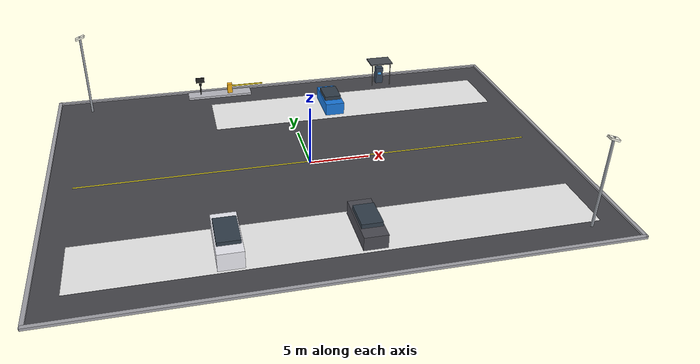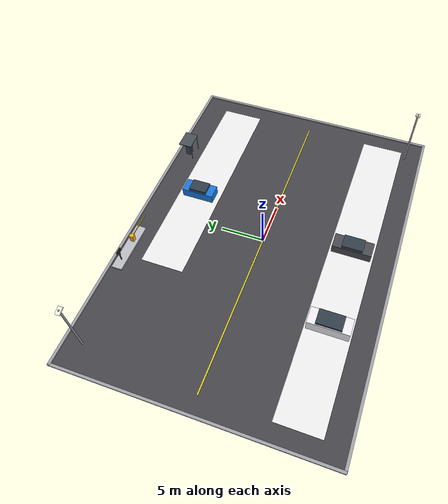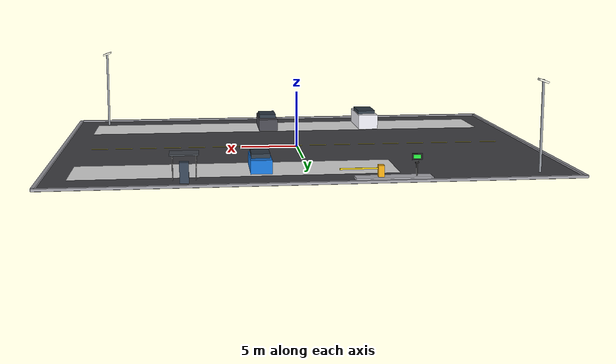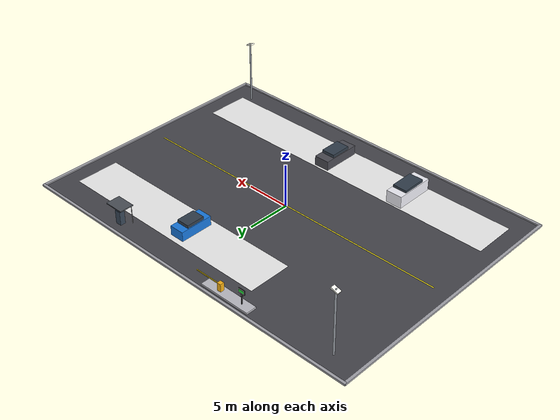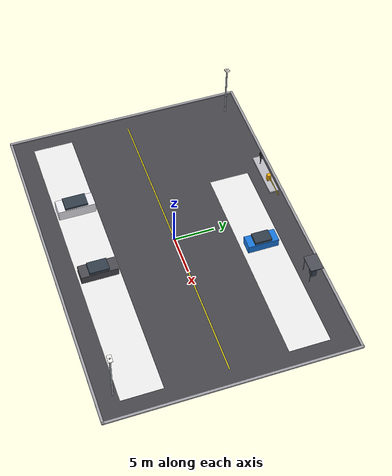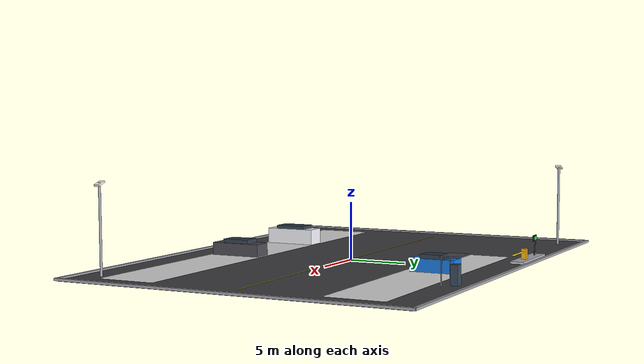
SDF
<?xml version="1.0" ?>
<sdf version="1.8">
  <model name="paid_parking_lot">
    <static>true</static>
    <link name="parking_link">

      <!-- ==================== 物理碰撞剛體 (Decoupled Ground & Obstacles) ==================== -->
      <!-- 停車場瀝青地面大底 (42m x 30m x 0.1m) -->
      <collision name="ground_col">
        <pose>0 0 0.05 0 0 0</pose>
        <geometry><box><size>42.0 30.0 0.1</size></box></geometry>
        <surface><friction><ode><mu>0.85</mu><mu2>0.85</mu2></ode></friction></surface>
      </collision>
      <!-- 入口收費柵欄機與辨識機柱碰撞剛體 -->
      <collision name="gate_island_col">
        <pose>-6.0 14.2 0.3 0 0 0</pose>
        <geometry><box><size>6.5 1.8 0.6</size></box></geometry>
      </collision>
      <!-- 自助自動繳費機亭碰撞剛體 -->
      <collision name="pay_station_col">
        <pose>10.0 13.5 1.2 0 0 0</pose>
        <geometry><box><size>2.4 1.8 2.4</size></box></geometry>
      </collision>

      <!-- ==================== 視覺主體：瀝青鋪面與周邊路緣石 ==================== -->
      <visual name="asphalt_deck">
        <pose>0 0 0.05 0 0 0</pose>
        <geometry><box><size>42.0 30.0 0.1</size></box></geometry>
        <material>
          <ambient>0.24 0.24 0.25 1</ambient>
          <diffuse>0.28 0.28 0.30 1</diffuse>
        </material>
      </visual>

      <!-- 周圍混凝土路緣石防護 (Perimeter Curbs) -->
      <visual name="curb_north"><pose>0 15.0 0.15 0 0 0</pose><geometry><box><size>42.2 0.3 0.2</size></box></geometry><material><ambient>0.6 0.6 0.62 1</ambient><diffuse>0.65 0.65 0.68 1</diffuse></material></visual>
      <visual name="curb_south"><pose>0 -15.0 0.15 0 0 0</pose><geometry><box><size>42.2 0.3 0.2</size></box></geometry><material><ambient>0.6 0.6 0.62 1</ambient><diffuse>0.65 0.65 0.68 1</diffuse></material></visual>
      <visual name="curb_east"><pose>21.0 0 0.15 0 0 0</pose><geometry><box><size>0.3 30.2 0.2</size></box></geometry><material><ambient>0.6 0.6 0.62 1</ambient><diffuse>0.65 0.65 0.68 1</diffuse></material></visual>
      <visual name="curb_west"><pose>-21.0 0 0.15 0 0 0</pose><geometry><box><size>0.3 30.2 0.2</size></box></geometry><material><ambient>0.6 0.6 0.62 1</ambient><diffuse>0.65 0.65 0.68 1</diffuse></material></visual>

      <!-- ==================== 標準白色車位劃線與倒車防撞擋輪桿 ==================== -->
      <!-- 南側車位劃線 (10 格: 5m x 2.5m) -->
      <visual name="stall_lines_s">
        <pose>0 -10.0 0.105 0 0 0</pose>
        <geometry><box><size>38.0 5.0 0.002</size></box></geometry>
        <material><ambient>0.92 0.92 0.92 1</ambient><diffuse>0.95 0.95 0.95 1</diffuse></material>
      </visual>
      <!-- 北側車位劃線 (8 格) -->
      <visual name="stall_lines_n">
        <pose>6.0 9.5 0.105 0 0 0</pose>
        <geometry><box><size>26.0 5.0 0.002</size></box></geometry>
        <material><ambient>0.92 0.92 0.92 1</ambient><diffuse>0.95 0.95 0.95 1</diffuse></material>
      </visual>
      <!-- 中央行車動線黃色導引箭頭與車道中線 -->
      <visual name="drive_lane_line">
        <pose>0 0 0.105 0 0 0</pose>
        <geometry><box><size>38.0 0.15 0.002</size></box></geometry>
        <material><ambient>0.9 0.82 0.1 1</ambient><diffuse>0.95 0.88 0.12 1</diffuse></material>
      </visual>

      <!-- ==================== 入出口安全島、車牌辨識與電動起落桿 (ALPR & Barrier Gate) ==================== -->
      <!-- 中央混凝土安全島 (Center Island) -->
      <visual name="gate_island">
        <pose>-6.0 14.0 0.2 0 0 0</pose>
        <geometry><box><size>6.0 1.2 0.2</size></box></geometry>
        <material><ambient>0.7 0.7 0.72 1</ambient><diffuse>0.75 0.75 0.78 1</diffuse></material></visual>

      <!-- 入口車牌辨識立柱 (ALPR Camera Pole: 黑色圓柱 + 鏡頭) -->
      <visual name="alpr_pole_in">
        <pose>-7.8 14.0 0.8 0 0 0</pose>
        <geometry><cylinder><radius>0.06</radius><length>1.2</length></cylinder></geometry>
        <material><ambient>0.15 0.15 0.15 1</ambient><diffuse>0.2 0.2 0.2 1</diffuse></material>
      </visual>
      <visual name="alpr_camera_in">
        <pose>-7.8 14.0 1.35 0 0.2 0</pose>
        <geometry><box><size>0.25 0.15 0.15</size></box></geometry>
        <material><ambient>0.1 0.1 0.1 1</ambient><diffuse>0.15 0.15 0.15 1</diffuse></material>
      </visual>

      <!-- 電動升降欄杆機箱 (Barrier Gate Housing: 亮黃色) -->
      <visual name="barrier_housing">
        <pose>-5.0 14.0 0.7 0 0 0</pose>
        <geometry><box><size>0.45 0.45 1.0</size></box></geometry>
        <material><ambient>0.95 0.65 0.05 1</ambient><diffuse>0.98 0.70 0.08 1</diffuse></material>
      </visual>
      <!-- 黑黃相間升降欄杆桿體 (Barrier Arm: 長 3.2m) -->
      <visual name="barrier_arm">
        <pose>-3.4 14.0 0.95 0 0 0</pose>
        <geometry><box><size>3.2 0.06 0.12</size></box></geometry>
        <material><ambient>0.95 0.8 0.05 1</ambient><diffuse>0.98 0.85 0.08 1</diffuse></material>
      </visual>

      <!-- 剩餘車位數位 LED 指示看板 ("滿位 / 空車位") -->
      <visual name="vacancy_display_board">
        <pose>-7.8 14.0 1.8 0 0 0</pose>
        <geometry><box><size>0.8 0.1 0.5</size></box></geometry>
        <material><ambient>0.1 0.1 0.1 1</ambient><diffuse>0.15 0.15 0.15 1</diffuse></material>
      </visual>
      <visual name="vacancy_led_green">
        <pose>-7.8 14.06 1.8 0 0 0</pose>
        <geometry><box><size>0.6 0.02 0.3</size></box></geometry>
        <material>
          <ambient>0.1 0.9 0.2 1</ambient>
          <diffuse>0.15 0.95 0.25 1</diffuse>
          <emissive>0.2 0.9 0.3 1</emissive>
        </material>
      </visual>

      <!-- ==================== 自助自動繳費機亭 (Automated Pay Station) ==================== -->
      <!-- 繳費亭防雨遮棚 (Kiosk Canopy) -->
      <visual name="kiosk_canopy_roof">
        <pose>10.0 13.5 2.35 0 0 0</pose>
        <geometry><box><size>2.2 1.6 0.1</size></box></geometry>
        <material><ambient>0.25 0.26 0.28 1</ambient><diffuse>0.30 0.32 0.35 1</diffuse></material>
      </visual>
      <visual name="kiosk_post1"><pose>9.1 12.8 1.2 0 0 0</pose><geometry><cylinder><radius>0.04</radius><length>2.2</length></cylinder></geometry><material><ambient>0.5 0.5 0.5 1</ambient><diffuse>0.6 0.6 0.6 1</diffuse></material></visual>
      <visual name="kiosk_post2"><pose>10.9 12.8 1.2 0 0 0</pose><geometry><cylinder><radius>0.04</radius><length>2.2</length></cylinder></geometry><material><ambient>0.5 0.5 0.5 1</ambient><diffuse>0.6 0.6 0.6 1</diffuse></material></visual>
      <!-- 自動繳費機本體 (Pay Machine Body) -->
      <visual name="pay_machine_body">
        <pose>10.0 13.6 0.9 0 0 0</pose>
        <geometry><box><size>0.7 0.6 1.6</size></box></geometry>
        <material><ambient>0.18 0.22 0.28 1</ambient><diffuse>0.22 0.28 0.35 1</diffuse></material>
      </visual>
      <!-- 觸控螢幕發光 (Touchscreen Glow) -->
      <visual name="pay_screen">
        <pose>10.0 13.29 1.15 0 0.1 0</pose>
        <geometry><box><size>0.35 0.02 0.28</size></box></geometry>
        <material>
          <ambient>0.2 0.6 0.9 1</ambient>
          <diffuse>0.3 0.7 1.0 1</diffuse>
          <emissive>0.4 0.7 0.95 1</emissive>
        </material>
      </visual>

      <!-- ==================== 夜間投光照明高燈桿 (High-mast LED Floodlights: 2 座) ==================== -->
      <!-- 燈桿 1 (東南角: 高 7.5m) -->
      <visual name="floodlight_pole_1">
        <pose>18.0 -13.0 3.75 0 0 0</pose>
        <geometry><cylinder><radius>0.1</radius><length>7.5</length></cylinder></geometry>
        <material><ambient>0.5 0.52 0.55 1</ambient><diffuse>0.6 0.62 0.65 1</diffuse></material>
      </visual>
      <visual name="floodlight_head_1">
        <pose>18.0 -13.0 7.4 0 0.35 0</pose>
        <geometry><box><size>0.8 0.5 0.15</size></box></geometry>
        <material>
          <ambient>0.95 0.95 0.9 1</ambient>
          <diffuse>1.0 1.0 0.95 1</diffuse>
          <emissive>0.8 0.8 0.75 1</emissive>
        </material>
      </visual>
      <!-- 燈桿 2 (西北角: 高 7.5m) -->
      <visual name="floodlight_pole_2">
        <pose>-18.0 13.0 3.75 0 0 0</pose>
        <geometry><cylinder><radius>0.1</radius><length>7.5</length></cylinder></geometry>
        <material><ambient>0.5 0.52 0.55 1</ambient><diffuse>0.6 0.62 0.65 1</diffuse></material>
      </visual>
      <visual name="floodlight_head_2">
        <pose>-18.0 13.0 7.4 0 -0.35 0</pose>
        <geometry><box><size>0.8 0.5 0.15</size></box></geometry>
        <material>
          <ambient>0.95 0.95 0.9 1</ambient>
          <diffuse>1.0 1.0 0.95 1</diffuse>
          <emissive>0.8 0.8 0.75 1</emissive>
        </material>
      </visual>

      <!-- ==================== 場內停放之代表性車輛模型 (Parked Vehicles) ==================== -->
      <!-- 停放車輛 1: 白色休旅車 (SUV in South Stall 3) -->
      <visual name="parked_suv_body">
        <pose>-8.0 -10.0 0.8 0 0 1.5708</pose>
        <geometry><box><size>4.6 1.9 1.4</size></box></geometry>
        <material><ambient>0.9 0.9 0.92 1</ambient><diffuse>0.95 0.95 0.98 1</diffuse></material>
      </visual>
      <visual name="parked_suv_cabin">
        <pose>-8.0 -10.0 1.45 0 0 1.5708</pose>
        <geometry><box><size>2.8 1.7 0.7</size></box></geometry>
        <material><ambient>0.15 0.2 0.25 0.9</ambient><diffuse>0.2 0.25 0.3 0.9</diffuse></material>
      </visual>

      <!-- 停放車輛 2: 深灰沉穩房車 (Sedan in South Stall 6) -->
      <visual name="parked_sedan_body">
        <pose>2.0 -10.0 0.65 0 0 1.5708</pose>
        <geometry><box><size>4.5 1.8 1.1</size></box></geometry>
        <material><ambient>0.25 0.25 0.28 1</ambient><diffuse>0.3 0.3 0.33 1</diffuse></material>
      </visual>
      <visual name="parked_sedan_cabin">
        <pose>2.0 -10.0 1.25 0 0 1.5708</pose>
        <geometry><box><size>2.4 1.6 0.6</size></box></geometry>
        <material><ambient>0.15 0.2 0.25 0.9</ambient><diffuse>0.2 0.25 0.3 0.9</diffuse></material>
      </visual>

      <!-- 停放車輛 3: 亮藍色掀背小車 (Hatchback in North Stall 2) -->
      <visual name="parked_hatch_body">
        <pose>4.0 9.5 0.65 0 0 -1.5708</pose>
        <geometry><box><size>3.8 1.7 1.1</size></box></geometry>
        <material><ambient>0.08 0.42 0.78 1</ambient><diffuse>0.1 0.48 0.88 1</diffuse></material>
      </visual>
      <visual name="parked_hatch_cabin">
        <pose>4.0 9.5 1.25 0 0 -1.5708</pose>
        <geometry><box><size>2.1 1.5 0.6</size></box></geometry>
        <material><ambient>0.15 0.2 0.25 0.9</ambient><diffuse>0.2 0.25 0.3 0.9</diffuse></material>
      </visual>
    </link>
  </model>
</sdf>
